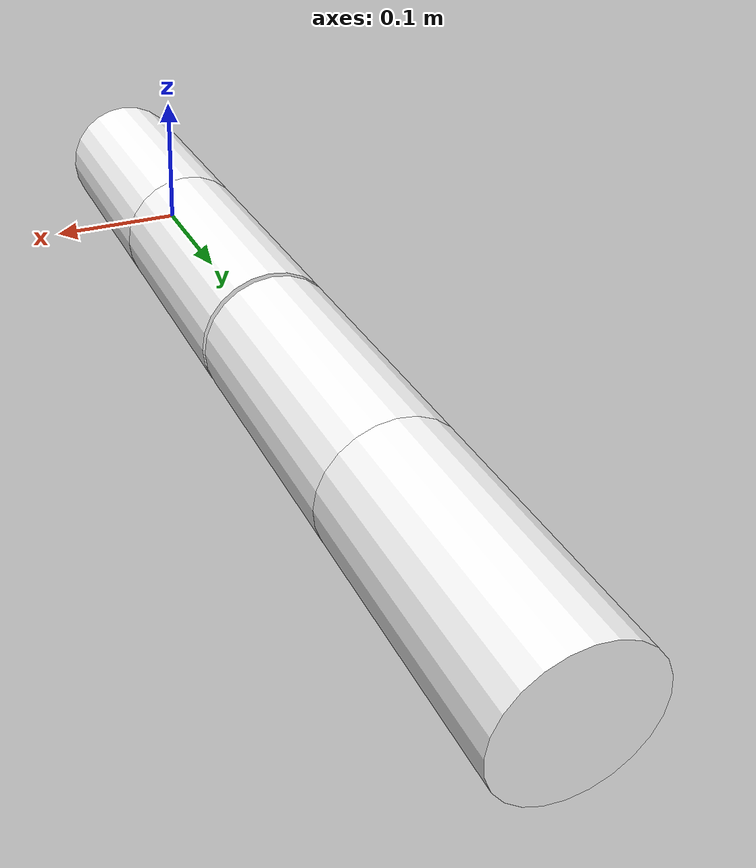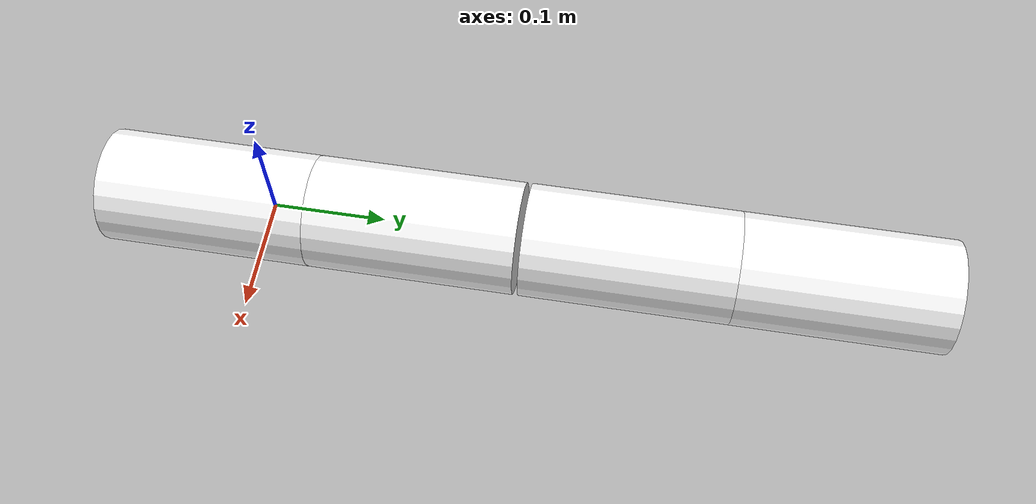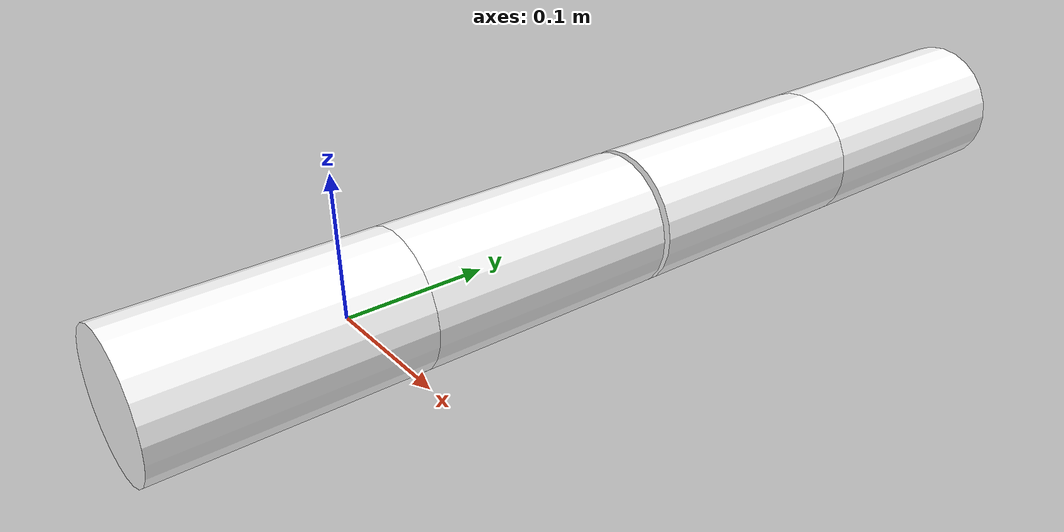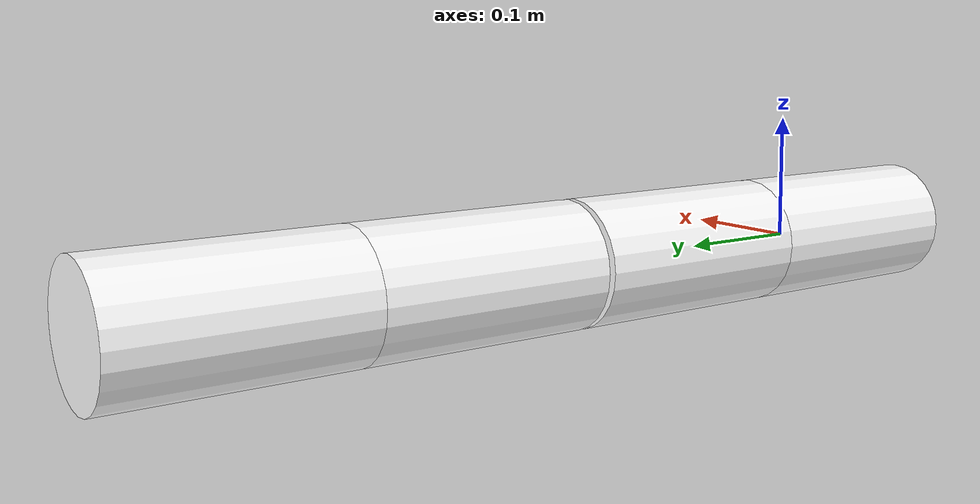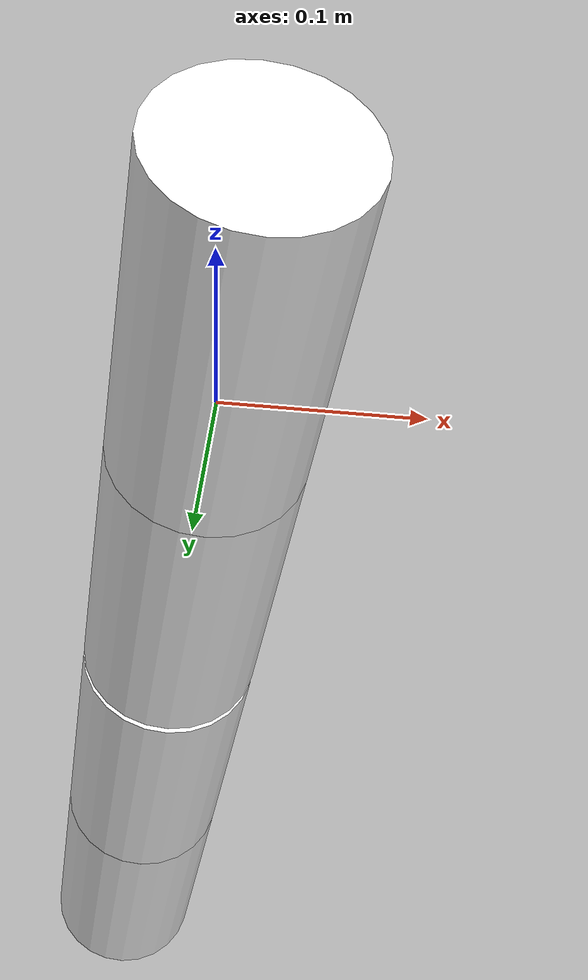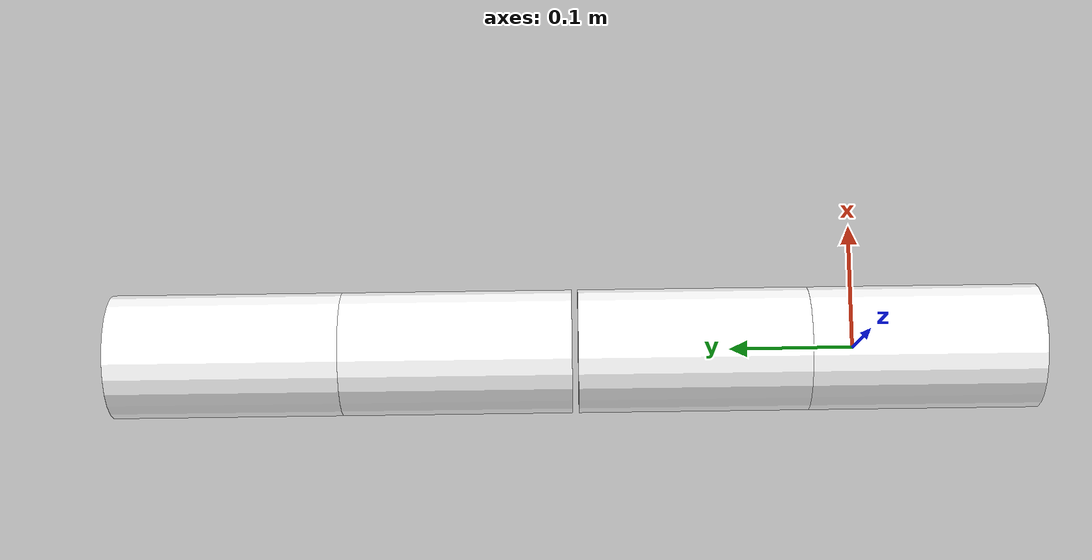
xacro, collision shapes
<?xml version="1.0" encoding="UTF-8"?>

<robot xmlns:xacro = "http://www.ros.org/wiki/xacro" name = "snakebot">
    <material name = "white">
        <color rgba = "1 1 1 1"/>
    </material>

    <!-- First Joint -->

    <link name = "base_footprint"></link>
    <link name =  "base_link">
        <visual>
            <origin rpy = "1.5708 1.5708 0" xyz = "0 0 0"/>
            <geometry>
                <mesh filename = "package://snakebot_description/meshes/full_module.stl" scale = "0.001 0.001 0.001"/>
            </geometry>
            <material name = "white"/>
        </visual>
        <collision>
            <origin rpy = "1.5708 1.5708 0" xyz = "0 -0.055 0"/>
            <geometry>
                <cylinder radius = "0.05" length = "0.185"/>
            </geometry>
        </collision>
    </link>
    <joint name = "base_joint" type = "continuous">
        <parent link = "base_footprint"/>
        <child link = "base_link"/>
        <axis xyz = "0 0.5 0.5"/>
        <origin rpy = "0 0 0" xyz = "0 0 0"/>
    </joint>

    <!-- Second Joint -->
    <link name = "second_link">
        <visual>
            <origin rpy = "1.5708 1.5708 0" xyz = "0 0 0"/>
            <geometry>
                <mesh filename = "package://snakebot_description/meshes/full_module.stl" scale = "0.001 0.001 0.001"/>
            </geometry>
            <material name = "white"/>
        </visual>
        <collision>
            <origin rpy = "1.5708 1.5708 0" xyz = "0 -0.055 0"/>
            <geometry>
                <cylinder radius = "0.05" length = "0.185"/>
            </geometry>
        </collision>
    </link>
    <joint name = "second_joint" type = "continuous">
        <parent link  = "base_link"/>
        <child link = "second_link"/>
        <axis xyz = "0 1 0"/>
        <origin rpy = "0 0 0" xyz = "0 0.185 0"/>
    </joint>

    <!-- Third Joint -->
    <link name = "third_link">
        <visual>
            <origin rpy = "1.5708 1.5708 0" xyz = "0 -0.055 0"/>
            <geometry>
                <mesh filename = "package://snakebot_description/meshes/full_module.stl" scale = "0.001 0.001 0.001"/>
            </geometry>
            <material name = "white"/>
        </visual>
        <collision>
            <origin rpy = "1.5708 1.5708 0" xyz = "0 -0.05 0"/>
            <geometry>
                <cylinder radius = "0.05" length = "0.185"/>
            </geometry>
        </collision>
    </link>
    <joint name = "third_joint" type = "continuous">
        <parent link  = "second_link"/>
        <child link = "third_link"/>
        <axis xyz = "0 1 0"/>
        <origin rpy = "0 0 0" xyz = "0 0.185 0"/>
    </joint>

    <!-- Fourth Joint-->
    <link name = "fourth_link">
        <visual>
            <origin rpy = "1.5708 1.5708 0" xyz = "0 -0.055 0"/>
            <geometry>
                <mesh filename = "package://snakebot_description/meshes/full_module.stl" scale = "0.001 0.001 0.001"/>
            </geometry>
            <material name = "white"/>
        </visual>
        <collision>
            <origin rpy = "1.5708 1.5708 0" xyz = "0 -0.05 0"/>
                <geometry>
                    <cylinder radius = "0.05" length = "0.185"/>
                </geometry>
        </collision>
    </link>
    <joint name = "fourth_joint" type = "continuous">
        <parent link  = "third_link"/>
        <child link = "fourth_link"/>
        <axis xyz = "0 1 0"/>
        <origin rpy = "0 0 0" xyz = "0 0.185 0"/>
    </joint>

</robot>
